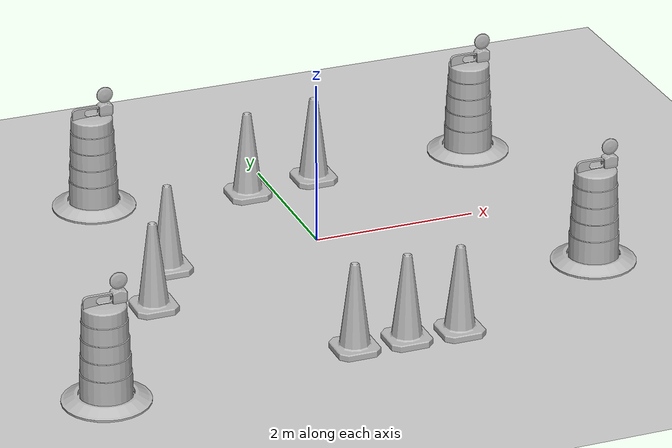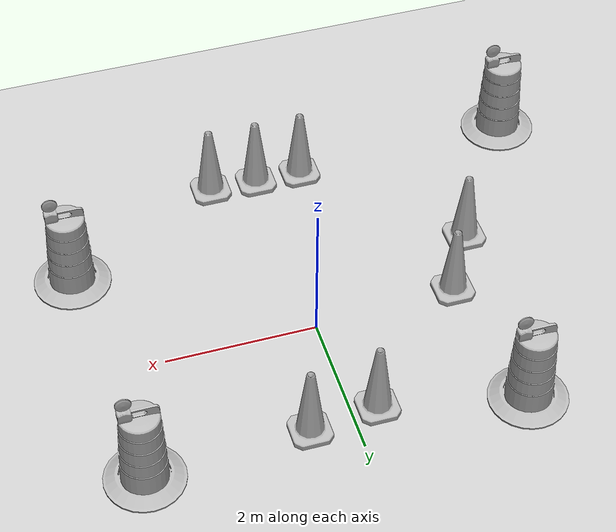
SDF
<sdf version="1.7">
 <world name="default">
  <light name="sun" type="directional">
   <pose>0 0 10 0 -0 0</pose>
   <diffuse>0.8 0.8 0.8 1</diffuse>
   <specular>0.2 0.2 0.2 1</specular>
   <attenuation>
    <range>1000</range>
    <constant>0.9</constant>
    <linear>0.01</linear>
    <quadratic>0.001</quadratic>
   </attenuation>
   <direction>-0.5 0.1 -0.9</direction>
   <spot><inner_angle>0</inner_angle><outer_angle>0</outer_angle><falloff>0</falloff></spot>
  </light>
  <model name="ground_plane">
   <static>1</static>
   <link name="link">
    <collision name="collision">
     <geometry><plane><normal>0 0 1</normal><size>100 100</size></plane></geometry>
     <surface><friction><ode><mu>100</mu><mu2>50</mu2></ode></friction></surface>
    </collision>
    <visual name="visual">
     <cast_shadows>0</cast_shadows>
     <geometry><plane><normal>0 0 1</normal><size>100 100</size></plane></geometry>
     <material>
      <script><uri>file://media/materials/scripts/gazebo.material</uri><name>Gazebo/Grey</name></script>
     </material>
    </visual>
   </link>
  </model>
  <gravity>0 0 -9.8</gravity>
  <magnetic_field>6e-06 2.3e-05 -4.2e-05</magnetic_field>
  <atmosphere type="adiabatic"/>
  <physics type="ode">
   <max_step_size>0.001</max_step_size>
   <real_time_factor>1</real_time_factor>
   <real_time_update_rate>1000</real_time_update_rate>
  </physics>
  <scene><ambient>0.4 0.4 0.4 1</ambient><background>0.7 0.7 0.7 1</background><shadows>1</shadows></scene>
  <audio><device>default</device></audio>
  <spherical_coordinates>
   <surface_model>EARTH_WGS84</surface_model>
   <latitude_deg>0</latitude_deg>
   <longitude_deg>0</longitude_deg>
   <elevation>0</elevation>
   <heading_deg>0</heading_deg>
  </spherical_coordinates>
  <model name="Construction Barrel">
   <link name="link">
    <inertial>
     <pose>0 0 0.4 0 -0 0</pose>
     <mass>500</mass>
     <inertia><ixx>51.2096</ixx><iyy>51.2096</iyy><izz>25</izz><ixy>0</ixy><ixz>0</ixz><iyz>0</iyz></inertia>
    </inertial>
    <collision name="collision">
     <geometry><mesh><uri>model://construction_barrel/meshes/construction_barrel.dae</uri></mesh></geometry>
    </collision>
    <visual name="visual">
     <geometry><mesh><uri>model://construction_barrel/meshes/construction_barrel.dae</uri></mesh></geometry>
    </visual>
   </link>
   <pose>-2.17625 1.8555 -2e-06 1e-06 8e-06 -2e-05</pose>
  </model>
  <model name="Construction Barrel_0">
   <link name="link">
    <inertial>
     <pose>0 0 0.4 0 -0 0</pose>
     <mass>500</mass>
     <inertia><ixx>51.2096</ixx><iyy>51.2096</iyy><izz>25</izz><ixy>0</ixy><ixz>0</ixz><iyz>0</iyz></inertia>
    </inertial>
    <collision name="collision">
     <geometry><mesh><uri>model://construction_barrel/meshes/construction_barrel.dae</uri></mesh></geometry>
    </collision>
    <visual name="visual">
     <geometry><mesh><uri>model://construction_barrel/meshes/construction_barrel.dae</uri></mesh></geometry>
    </visual>
   </link>
   <pose>2.83393 -1.69721 -1e-06 -1e-06 -0 -1.9e-05</pose>
  </model>
  <model name="Construction Cone">
   <link name="link">
    <collision name="collision">
     <geometry>
      <mesh><scale>10 10 10</scale><uri>model://construction_cone/meshes/construction_cone.dae</uri></mesh>
     </geometry>
    </collision>
    <visual name="visual">
     <geometry>
      <mesh><scale>10 10 10</scale><uri>model://construction_cone/meshes/construction_cone.dae</uri></mesh>
     </geometry>
    </visual>
    <inertial>
     <inertia><ixx>1</ixx><ixy>0</ixy><ixz>0</ixz><iyy>1</iyy><iyz>0</iyz><izz>1</izz></inertia>
     <mass>1</mass>
    </inertial>
   </link>
   <pose>-0.621804 -2.78873 -1e-05 -0 -0 -0</pose>
  </model>
  <model name="Construction Cone_0">
   <link name="link">
    <collision name="collision">
     <geometry>
      <mesh><scale>10 10 10</scale><uri>model://construction_cone/meshes/construction_cone.dae</uri></mesh>
     </geometry>
    </collision>
    <visual name="visual">
     <geometry>
      <mesh><scale>10 10 10</scale><uri>model://construction_cone/meshes/construction_cone.dae</uri></mesh>
     </geometry>
    </visual>
    <inertial>
     <inertia><ixx>1</ixx><ixy>0</ixy><ixz>0</ixz><iyy>1</iyy><iyz>0</iyz><izz>1</izz></inertia>
     <mass>1</mass>
    </inertial>
   </link>
   <pose>0.011763 -2.79147 -1e-05 0 -0 0</pose>
  </model>
  <model name="Construction Cone_1">
   <link name="link">
    <collision name="collision">
     <geometry>
      <mesh><scale>10 10 10</scale><uri>model://construction_cone/meshes/construction_cone.dae</uri></mesh>
     </geometry>
    </collision>
    <visual name="visual">
     <geometry>
      <mesh><scale>10 10 10</scale><uri>model://construction_cone/meshes/construction_cone.dae</uri></mesh>
     </geometry>
    </visual>
    <inertial>
     <inertia><ixx>1</ixx><ixy>0</ixy><ixz>0</ixz><iyy>1</iyy><iyz>0</iyz><izz>1</izz></inertia>
     <mass>1</mass>
    </inertial>
   </link>
   <pose>0.654438 -2.81017 -0 0 -1e-06 0</pose>
  </model>
  <model name="Construction Barrel_1">
   <link name="link">
    <inertial>
     <pose>0 0 0.4 0 -0 0</pose>
     <mass>500</mass>
     <inertia><ixx>51.2096</ixx><iyy>51.2096</iyy><izz>25</izz><ixy>0</ixy><ixz>0</ixz><iyz>0</iyz></inertia>
    </inertial>
    <collision name="collision">
     <geometry><mesh><uri>model://construction_barrel/meshes/construction_barrel.dae</uri></mesh></geometry>
    </collision>
    <visual name="visual">
     <geometry><mesh><uri>model://construction_barrel/meshes/construction_barrel.dae</uri></mesh></geometry>
    </visual>
   </link>
   <pose>2.66512 1.68697 -1e-06 1e-06 -1e-06 -1.3e-05</pose>
  </model>
  <model name="Construction Cone_2">
   <link name="link">
    <collision name="collision">
     <geometry>
      <mesh><scale>10 10 10</scale><uri>model://construction_cone/meshes/construction_cone.dae</uri></mesh>
     </geometry>
    </collision>
    <visual name="visual">
     <geometry>
      <mesh><scale>10 10 10</scale><uri>model://construction_cone/meshes/construction_cone.dae</uri></mesh>
     </geometry>
    </visual>
    <inertial>
     <inertia><ixx>1</ixx><ixy>0</ixy><ixz>0</ixz><iyy>1</iyy><iyz>0</iyz><izz>1</izz></inertia>
     <mass>1</mass>
    </inertial>
   </link>
   <pose>-1.90767 -0.102106 -0 0 -1e-06 0</pose>
  </model>
  <model name="Construction Cone_3">
   <link name="link">
    <collision name="collision">
     <geometry>
      <mesh><scale>10 10 10</scale><uri>model://construction_cone/meshes/construction_cone.dae</uri></mesh>
     </geometry>
    </collision>
    <visual name="visual">
     <geometry>
      <mesh><scale>10 10 10</scale><uri>model://construction_cone/meshes/construction_cone.dae</uri></mesh>
     </geometry>
    </visual>
    <inertial>
     <inertia><ixx>1</ixx><ixy>0</ixy><ixz>0</ixz><iyy>1</iyy><iyz>0</iyz><izz>1</izz></inertia>
     <mass>1</mass>
    </inertial>
   </link>
   <pose>-2.3933 -0.981141 -0 0 -1e-06 0</pose>
  </model>
  <model name="Construction Cone_4">
   <link name="link">
    <collision name="collision">
     <geometry>
      <mesh><scale>10 10 10</scale><uri>model://construction_cone/meshes/construction_cone.dae</uri></mesh>
     </geometry>
    </collision>
    <visual name="visual">
     <geometry>
      <mesh><scale>10 10 10</scale><uri>model://construction_cone/meshes/construction_cone.dae</uri></mesh>
     </geometry>
    </visual>
    <inertial>
     <inertia><ixx>1</ixx><ixy>0</ixy><ixz>0</ixz><iyy>1</iyy><iyz>0</iyz><izz>1</izz></inertia>
     <mass>1</mass>
    </inertial>
   </link>
   <pose>0.571523 1.5902 -0 0 -1e-06 0</pose>
  </model>
  <model name="Construction Cone_5">
   <link name="link">
    <collision name="collision">
     <geometry>
      <mesh><scale>10 10 10</scale><uri>model://construction_cone/meshes/construction_cone.dae</uri></mesh>
     </geometry>
    </collision>
    <visual name="visual">
     <geometry>
      <mesh><scale>10 10 10</scale><uri>model://construction_cone/meshes/construction_cone.dae</uri></mesh>
     </geometry>
    </visual>
    <inertial>
     <inertia><ixx>1</ixx><ixy>0</ixy><ixz>0</ixz><iyy>1</iyy><iyz>0</iyz><izz>1</izz></inertia>
     <mass>1</mass>
    </inertial>
   </link>
   <pose>-0.334688 1.47233 -0 1e-06 -0 0</pose>
  </model>
  <model name="Construction Barrel_2">
   <link name="link">
    <inertial>
     <pose>0 0 0.4 0 -0 0</pose>
     <mass>500</mass>
     <inertia><ixx>51.2096</ixx><iyy>51.2096</iyy><izz>25</izz><ixy>0</ixy><ixz>0</ixz><iyz>0</iyz></inertia>
    </inertial>
    <collision name="collision">
     <geometry><mesh><uri>model://construction_barrel/meshes/construction_barrel.dae</uri></mesh></geometry>
    </collision>
    <visual name="visual">
     <geometry><mesh><uri>model://construction_barrel/meshes/construction_barrel.dae</uri></mesh></geometry>
    </visual>
   </link>
   <pose>-3.61256 -2.90447 -1e-06 4e-06 -2e-06 -4e-06</pose>
  </model>
 </world>
</sdf>
